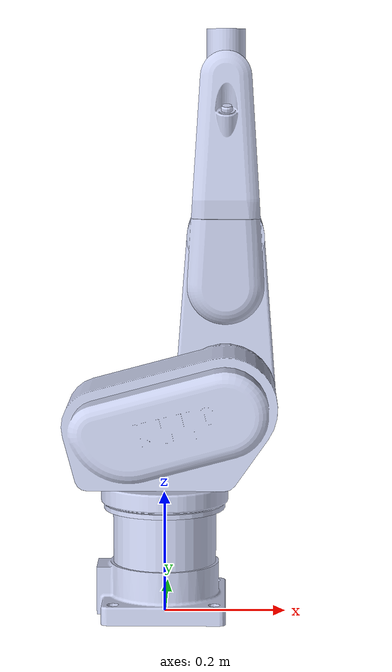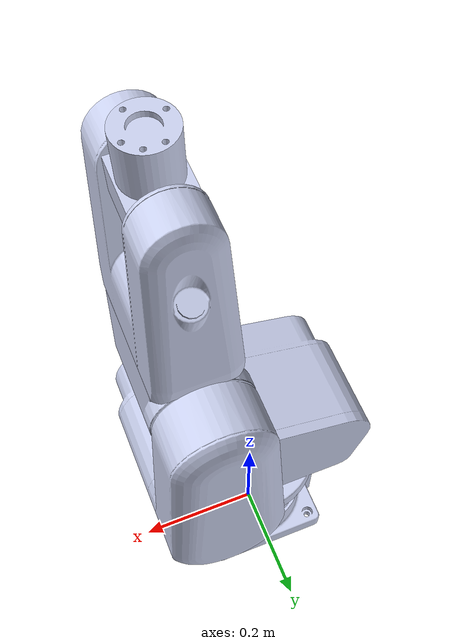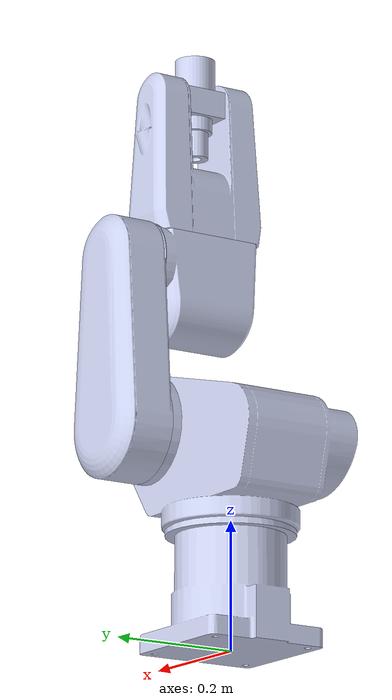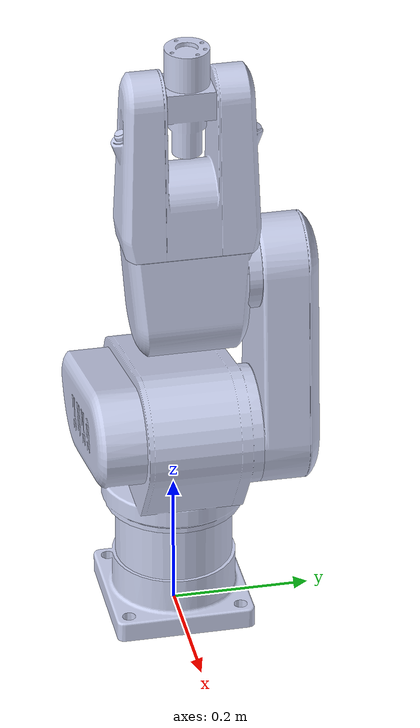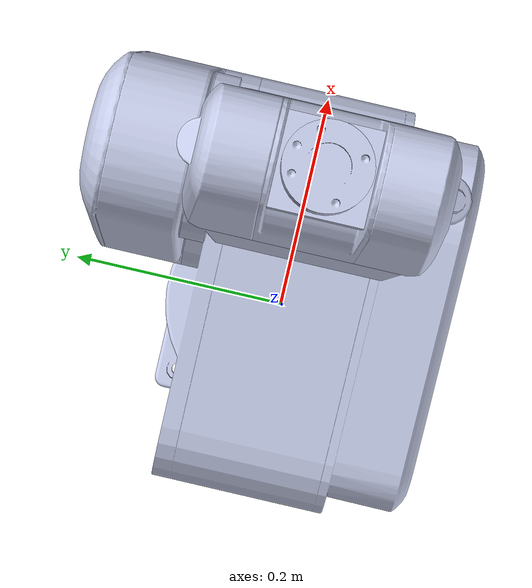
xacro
<?xml version="1.0"?>
<robot xmlns:xacro="http://www.ros.org/wiki/xacro" name="m6r">
    <xacro:arg name="initial_positions_file" default="initial_positions.yaml" />

    <!-- Import m6r urdf file -->
    <xacro:include filename="$(find m6r_description)/urdf/m6r.urdf" />

    <!-- Import control_xacro -->
    <xacro:include filename="m6r.ros2_control.xacro" />

    <xacro:m6r_ros2_control name="FakeSystem" initial_positions_file="$(arg initial_positions_file)"/>

</robot>

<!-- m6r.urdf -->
<robot
  name="m6r">
  <link
    name="base_link">
    <inertial>
      <origin
        xyz="-0.001886 0.077658 4.2267E-10"
        rpy="0 0 0" />
      <mass
        value="4.7424" />
      <inertia
        ixx="0.023491"
        ixy="-0.00027982"
        ixz="1.7111E-10"
        iyy="0.02209"
        iyz="5.259E-11"
        izz="0.024355" />
    </inertial>
    <visual>
      <origin
        xyz="0 0 0"
        rpy="0 0 0" />
      <geometry>
        <mesh
          filename="package://m6r_description/meshes/base_link.STL" />
      </geometry>
      <material
        name="">
        <color
          rgba="0.79216 0.81961 0.93333 1" />
      </material>
    </visual>
    <collision>
      <origin
        xyz="0 0 0"
        rpy="0 0 0" />
      <geometry>
        <mesh
          filename="package://m6r_description/meshes/base_link.STL" />
      </geometry>
    </collision>
  </link>
  <link
    name="waist_link">
    <inertial>
      <origin
        xyz="0.01397 -0.015936 0.13297"
        rpy="0 0 0" />
      <mass
        value="13.487" />
      <inertia
        ixx="0.10312"
        ixy="-0.0027943"
        ixz="-0.017519"
        iyy="0.15426"
        iyz="0.0041824"
        izz="0.1509" />
    </inertial>
    <visual>
      <origin
        xyz="0 0 0"
        rpy="0 0 0" />
      <geometry>
        <mesh
          filename="package://m6r_description/meshes/waist_link.STL" />
      </geometry>
      <material
        name="">
        <color
          rgba="0.79216 0.81961 0.93333 1" />
      </material>
    </visual>
    <collision>
      <origin
        xyz="0 0 0"
        rpy="0 0 0" />
      <geometry>
        <mesh
          filename="package://m6r_description/meshes/waist_link.STL" />
      </geometry>
    </collision>
  </link>
  <joint
    name="joint1"
    type="revolute">
    <origin
      xyz="0 0 0.175"
      rpy="0 0 0" />
    <parent
      link="base_link" />
    <child
      link="waist_link" />
    <axis
      xyz="0 0 1" />
    <limit
      lower="-3.14"
      upper="3.14"
      effort="10"
      velocity="50" />
  </joint>
  <link
    name="shoulder_link">
    <inertial>
      <origin
        xyz="-0.051376 0.041747 0.10108"
        rpy="0 0 0" />
      <mass
        value="4.7638" />
      <inertia
        ixx="0.050589"
        ixy="1.3908E-06"
        ixz="0.020141"
        iyy="0.066303"
        iyz="-2.7104E-06"
        izz="0.021199" />
    </inertial>
    <visual>
      <origin
        xyz="0 0 0"
        rpy="0 0 0" />
      <geometry>
        <mesh
          filename="package://m6r_description/meshes/shoulder_link.STL" />
      </geometry>
      <material
        name="">
        <color
          rgba="0.79216 0.81961 0.93333 1" />
      </material>
    </visual>
    <collision>
      <origin
        xyz="0 0 0"
        rpy="0 0 0" />
      <geometry>
        <mesh
          filename="package://m6r_description/meshes/shoulder_link.STL" />
      </geometry>
    </collision>
  </link>
  <joint
    name="joint2"
    type="revolute">
    <origin
      xyz="0.1 0.094 0.175"
      rpy="0 0.47024 0" />
    <parent
      link="waist_link" />
    <child
      link="shoulder_link" />
    <axis
      xyz="0 1 0" />
    <limit
      lower="-3.14"
      upper="3.14"
      effort="10"
      velocity="50" />
  </joint>
  <link
    name="elbow_link">
    <inertial>
      <origin
        xyz="-0.032446 -0.089942 -4.6879E-07"
        rpy="0 0 0" />
      <mass
        value="3.1983" />
      <inertia
        ixx="0.011223"
        ixy="-0.00041339"
        ixz="-6.0881E-08"
        iyy="0.010279"
        iyz="-6.8224E-08"
        izz="0.014656" />
    </inertial>
    <visual>
      <origin
        xyz="0 0 0"
        rpy="0 0 0" />
      <geometry>
        <mesh
          filename="package://m6r_description/meshes/elbow_link.STL" />
      </geometry>
      <material
        name="">
        <color
          rgba="0.79216 0.81961 0.93333 1" />
      </material>
    </visual>
    <collision>
      <origin
        xyz="0 0 0"
        rpy="0 0 0" />
      <geometry>
        <mesh
          filename="package://m6r_description/meshes/elbow_link.STL" />
      </geometry>
    </collision>
  </link>
  <joint
    name="joint3"
    type="revolute">
    <origin
      xyz="-0.12007 0 0.23624"
      rpy="3.1416 -1.1006 3.1416" />
    <parent
      link="shoulder_link" />
    <child
      link="elbow_link" />
    <axis
      xyz="0 1 0" />
    <limit
      lower="-3.14"
      upper="3.14"
      effort="10"
      velocity="50" />
  </joint>
  <link
    name="forearm_link">
    <inertial>
      <origin
        xyz="0.10468 -3.9216E-05 -5.056E-06"
        rpy="0 0 0" />
      <mass
        value="3.5743" />
      <inertia
        ixx="0.015239"
        ixy="1.0219E-05"
        ixz="-2.9814E-06"
        iyy="0.020979"
        iyz="-1.7512E-07"
        izz="0.030802" />
    </inertial>
    <visual>
      <origin
        xyz="0 0 0"
        rpy="0 0 0" />
      <geometry>
        <mesh
          filename="package://m6r_description/meshes/forearm_link.STL" />
      </geometry>
      <material
        name="">
        <color
          rgba="0.79216 0.81961 0.93333 1" />
      </material>
    </visual>
    <collision>
      <origin
        xyz="0 0 0"
        rpy="0 0 0" />
      <geometry>
        <mesh
          filename="package://m6r_description/meshes/forearm_link.STL" />
      </geometry>
    </collision>
  </link>
  <joint
    name="joint4"
    type="revolute">
    <origin
      xyz="0.044963 -0.094 0"
      rpy="0 0 0" />
    <parent
      link="elbow_link" />
    <child
      link="forearm_link" />
    <axis
      xyz="1 0 0" />
    <limit
      lower="-3.14"
      upper="3.14"
      effort="10"
      velocity="50" />
  </joint>
  <link
    name="wriste_pitch">
    <inertial>
      <origin
        xyz="-0.01713 6.1831E-16 -1.3878E-17"
        rpy="0 0 0" />
      <mass
        value="0.29578" />
      <inertia
        ixx="0.00018202"
        ixy="1.8782E-20"
        ixz="2.4432E-20"
        iyy="0.00031068"
        iyz="-6.232E-21"
        izz="0.00030866" />
    </inertial>
    <visual>
      <origin
        xyz="0 0 0"
        rpy="0 0 0" />
      <geometry>
        <mesh
          filename="package://m6r_description/meshes/wriste_pitch.STL" />
      </geometry>
      <material
        name="">
        <color
          rgba="0.79216 0.81961 0.93333 1" />
      </material>
    </visual>
    <collision>
      <origin
        xyz="0 0 0"
        rpy="0 0 0" />
      <geometry>
        <mesh
          filename="package://m6r_description/meshes/wriste_pitch.STL" />
      </geometry>
    </collision>
  </link>
  <joint
    name="joint5"
    type="revolute">
    <origin
      xyz="0.22504 0 0"
      rpy="0 0 0" />
    <parent
      link="forearm_link" />
    <child
      link="wriste_pitch" />
    <axis
      xyz="0 1 0" />
    <limit
      lower="-3.14"
      upper="3.14"
      effort="10"
      velocity="50" />
  </joint>
  <link
    name="wriste_roll">
    <inertial>
      <origin
        xyz="0.037109 -4.1633E-16 -2.8774E-05"
        rpy="0 0 0" />
      <mass
        value="0.16216" />
      <inertia
        ixx="8.199E-05"
        ixy="4.2483E-19"
        ixz="1.1467E-07"
        iyy="7.8296E-05"
        iyz="-9.4868E-20"
        izz="7.8412E-05" />
    </inertial>
    <visual>
      <origin
        xyz="0 0 0"
        rpy="0 0 0" />
      <geometry>
        <mesh
          filename="package://m6r_description/meshes/wriste_roll.STL" />
      </geometry>
      <material
        name="">
        <color
          rgba="0.79216 0.81961 0.93333 1" />
      </material>
    </visual>
    <collision>
      <origin
        xyz="0 0 0"
        rpy="0 0 0" />
      <geometry>
        <mesh
          filename="package://m6r_description/meshes/wriste_roll.STL" />
      </geometry>
    </collision>
  </link>
  <joint
    name="joint6"
    type="revolute">
    <origin
      xyz="0.01 0 0"
      rpy="-1.9321 0 0" />
    <parent
      link="wriste_pitch" />
    <child
      link="wriste_roll" />
    <axis
      xyz="1 0 0" />
    <limit
      lower="-3.14"
      upper="3.14"
      effort="10"
      velocity="50" />
  </joint>
</robot>
